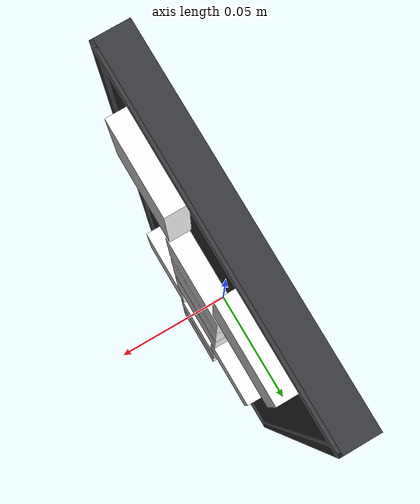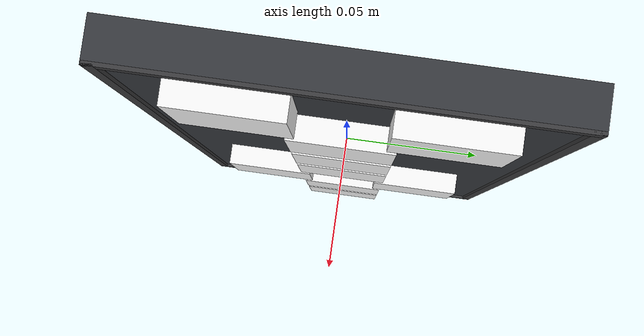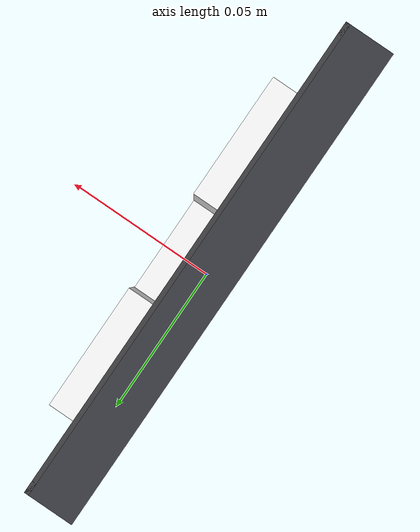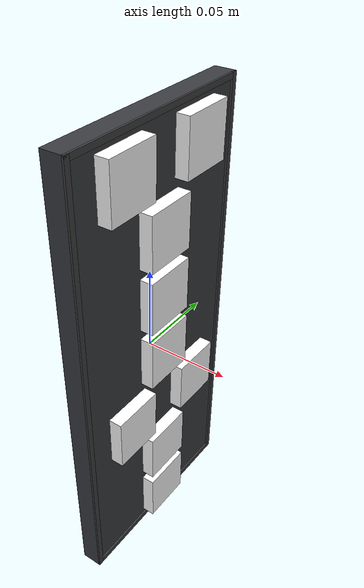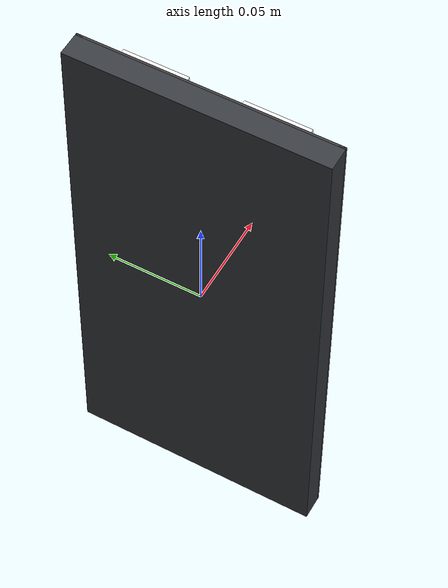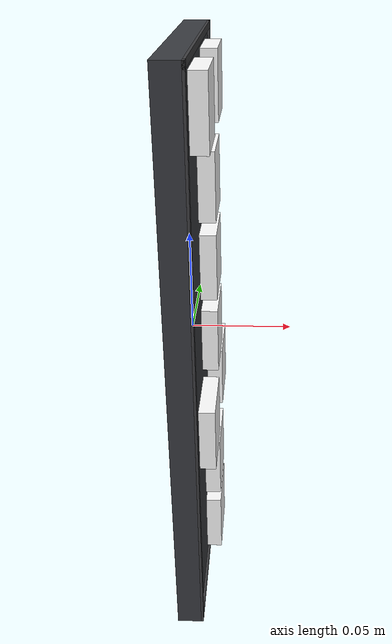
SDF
<?xml version="1.0"?>
<sdf version="1.8">
  <model name="elevator_button_v1">
    <static>false</static>
    <self_collide>false</self_collide>

    <link name="wall_panel">
      <inertial>
        <mass>2.0</mass>
        <inertia>
          <ixx>0.015918</ixx>
          <iyy>0.013091</iyy>
          <izz>0.002876</izz>
        </inertia>
      </inertial>
      <visual name="panel_visual">
        <geometry><box><size>0.012 0.1308 0.280</size></box></geometry>
        <material>
          <ambient>1 1 1 1</ambient>
          <diffuse>0.22 0.23 0.25 1</diffuse>
          <specular>0.30 0.30 0.30 1</specular>
          <pbr><metal><albedo_map>model://elevator_button_v1/textures/panel_steel.png</albedo_map><metalness>0.4</metalness><roughness>0.45</roughness></metal></pbr>
        </material>
      </visual>

      <!-- Machined rim: the photo shows a narrow dark frame around the plate,
           slightly thicker at the top and bottom rails. -->
      <visual name="panel_rim_top">
        <pose>0.0066 0 0.1383 0 0 0</pose>
        <geometry><box><size>0.0012 0.1308 0.0034</size></box></geometry>
        <material>
          <ambient>0.18 0.18 0.19 1</ambient>
          <diffuse>0.24 0.24 0.25 1</diffuse>
          <specular>0.18 0.18 0.18 1</specular>
          <pbr><metal><metalness>0.35</metalness><roughness>0.40</roughness></metal></pbr>
        </material>
      </visual>
      <visual name="panel_rim_bottom">
        <pose>0.0066 0 -0.1383 0 0 0</pose>
        <geometry><box><size>0.0012 0.1308 0.0034</size></box></geometry>
        <material>
          <ambient>0.18 0.18 0.19 1</ambient>
          <diffuse>0.24 0.24 0.25 1</diffuse>
          <specular>0.18 0.18 0.18 1</specular>
          <pbr><metal><metalness>0.35</metalness><roughness>0.40</roughness></metal></pbr>
        </material>
      </visual>
      <visual name="panel_rim_left">
        <pose>0.0066 -0.0637 0 0 0 0</pose>
        <geometry><box><size>0.0012 0.0034 0.280</size></box></geometry>
        <material>
          <ambient>0.18 0.18 0.19 1</ambient>
          <diffuse>0.24 0.24 0.25 1</diffuse>
          <specular>0.18 0.18 0.18 1</specular>
          <pbr><metal><metalness>0.35</metalness><roughness>0.40</roughness></metal></pbr>
        </material>
      </visual>
      <visual name="panel_rim_right">
        <pose>0.0066 0.0637 0 0 0 0</pose>
        <geometry><box><size>0.0012 0.0034 0.280</size></box></geometry>
        <material>
          <ambient>0.18 0.18 0.19 1</ambient>
          <diffuse>0.24 0.24 0.25 1</diffuse>
          <specular>0.18 0.18 0.18 1</specular>
          <pbr><metal><metalness>0.35</metalness><roughness>0.40</roughness></metal></pbr>
        </material>
      </visual>

      <collision name="panel_rib_top">
        <pose>0 0 0.137 0 0 0</pose>
        <geometry><box><size>0.012 0.1308 0.006</size></box></geometry>
      </collision>
      <collision name="panel_rib_a">
        <pose>0 0 0.0975 0 0 0</pose>
        <geometry><box><size>0.012 0.1308 0.005</size></box></geometry>
      </collision>
      <collision name="panel_rib_b">
        <pose>0 0 0.0585 0 0 0</pose>
        <geometry><box><size>0.012 0.1308 0.005</size></box></geometry>
      </collision>
      <collision name="panel_rib_c">
        <pose>0 0 0.0195 0 0 0</pose>
        <geometry><box><size>0.012 0.1308 0.005</size></box></geometry>
      </collision>
      <collision name="panel_rib_d">
        <pose>0 0 -0.0195 0 0 0</pose>
        <geometry><box><size>0.012 0.1308 0.005</size></box></geometry>
      </collision>
      <collision name="panel_rib_e">
        <pose>0 0 -0.0585 0 0 0</pose>
        <geometry><box><size>0.012 0.1308 0.005</size></box></geometry>
      </collision>
      <collision name="panel_rib_f">
        <pose>0 0 -0.0975 0 0 0</pose>
        <geometry><box><size>0.012 0.1308 0.005</size></box></geometry>
      </collision>
      <collision name="panel_rib_bottom">
        <pose>0 0 -0.137 0 0 0</pose>
        <geometry><box><size>0.012 0.1308 0.006</size></box></geometry>
      </collision>
    </link>

    <joint name="panel_world_joint" type="fixed">
      <parent>world</parent>
      <child>wall_panel</child>
    </joint>

    <!-- Every control is a real 4 mm spring-loaded link. -->
    <link name="button_alarm_face">
      <pose relative_to="wall_panel">0.010 -0.0298 0.117 0 0 0</pose>
      <inertial><mass>0.03</mass><inertia><ixx>0.00000545</ixx><iyy>0.00000288</iyy><izz>0.00000288</izz></inertia></inertial>
      <visual name="button_alarm_face">
        <geometry><box><size>0.008 0.033 0.033</size></box></geometry>
        <material>
          <ambient>1 1 1 1</ambient><diffuse>1 1 1 1</diffuse>
          <pbr><metal><albedo_map>model://elevator_button_v1/textures/button_alarm.png</albedo_map><metalness>0.08</metalness><roughness>0.30</roughness></metal></pbr>
        </material>
      </visual>
      <collision name="button_alarm_face_collision"><geometry><box><size>0.008 0.033 0.033</size></box></geometry><surface><friction><ode><mu>0.8</mu><mu2>0.8</mu2></ode></friction></surface></collision>
      <sensor name="button_alarm_contact" type="contact"><always_on>true</always_on><update_rate>200</update_rate><contact><collision>button_alarm_face_collision</collision></contact></sensor>
    </link>
    <joint name="button_alarm_press_joint" type="prismatic">
      <parent>wall_panel</parent><child>button_alarm_face</child>
      <axis><xyz>1 0 0</xyz><limit><lower>-0.004</lower><upper>0.0</upper></limit><dynamics><damping>0.50</damping><spring_reference>0.0</spring_reference><spring_stiffness>50.0</spring_stiffness></dynamics></axis>
    </joint>

    <link name="button_intercom_face">
      <pose relative_to="wall_panel">0.010 0.0298 0.117 0 0 0</pose>
      <inertial><mass>0.03</mass><inertia><ixx>0.00000545</ixx><iyy>0.00000288</iyy><izz>0.00000288</izz></inertia></inertial>
      <visual name="button_intercom_face">
        <geometry><box><size>0.008 0.033 0.033</size></box></geometry>
        <material>
          <ambient>1 1 1 1</ambient><diffuse>1 1 1 1</diffuse>
          <pbr><metal><albedo_map>model://elevator_button_v1/textures/button_intercom.png</albedo_map><metalness>0.08</metalness><roughness>0.30</roughness></metal></pbr>
        </material>
      </visual>
      <collision name="button_intercom_face_collision"><geometry><box><size>0.008 0.033 0.033</size></box></geometry><surface><friction><ode><mu>0.8</mu><mu2>0.8</mu2></ode></friction></surface></collision>
      <sensor name="button_intercom_contact" type="contact"><always_on>true</always_on><update_rate>200</update_rate><contact><collision>button_intercom_face_collision</collision></contact></sensor>
    </link>
    <joint name="button_intercom_press_joint" type="prismatic">
      <parent>wall_panel</parent><child>button_intercom_face</child>
      <axis><xyz>1 0 0</xyz><limit><lower>-0.004</lower><upper>0.0</upper></limit><dynamics><damping>0.50</damping><spring_reference>0.0</spring_reference><spring_stiffness>50.0</spring_stiffness></dynamics></axis>
    </joint>

    <link name="button_3_face">
      <pose relative_to="wall_panel">0.010 0 0.078 0 0 0</pose>
      <inertial><mass>0.03</mass><inertia><ixx>0.00000545</ixx><iyy>0.00000288</iyy><izz>0.00000288</izz></inertia></inertial>
      <visual name="button_3_face">
        <geometry><box><size>0.008 0.033 0.033</size></box></geometry>
        <material>
          <ambient>1 1 1 1</ambient><diffuse>1 1 1 1</diffuse>
          <pbr><metal><albedo_map>model://elevator_button_v1/textures/button_3.png</albedo_map><metalness>0.08</metalness><roughness>0.30</roughness></metal></pbr>
        </material>
      </visual>
      <collision name="button_3_face_collision"><geometry><box><size>0.008 0.033 0.033</size></box></geometry><surface><friction><ode><mu>0.8</mu><mu2>0.8</mu2></ode></friction></surface></collision>
      <sensor name="button_3_contact" type="contact"><always_on>true</always_on><update_rate>200</update_rate><contact><collision>button_3_face_collision</collision></contact></sensor>
    </link>
    <joint name="button_3_press_joint" type="prismatic">
      <parent>wall_panel</parent><child>button_3_face</child>
      <axis><xyz>1 0 0</xyz><limit><lower>-0.004</lower><upper>0.0</upper></limit><dynamics><damping>0.50</damping><spring_reference>0.0</spring_reference><spring_stiffness>50.0</spring_stiffness></dynamics></axis>
    </joint>

    <link name="button_2_face">
      <pose relative_to="wall_panel">0.010 0 0.039 0 0 0</pose>
      <inertial><mass>0.03</mass><inertia><ixx>0.00000545</ixx><iyy>0.00000288</iyy><izz>0.00000288</izz></inertia></inertial>
      <visual name="button_2_face">
        <geometry><box><size>0.008 0.033 0.033</size></box></geometry>
        <material>
          <ambient>1 1 1 1</ambient><diffuse>1 1 1 1</diffuse>
          <pbr><metal><albedo_map>model://elevator_button_v1/textures/button_2.png</albedo_map><metalness>0.08</metalness><roughness>0.30</roughness></metal></pbr>
        </material>
      </visual>
      <collision name="button_2_face_collision"><geometry><box><size>0.008 0.033 0.033</size></box></geometry><surface><friction><ode><mu>0.8</mu><mu2>0.8</mu2></ode></friction></surface></collision>
      <sensor name="button_2_contact" type="contact"><always_on>true</always_on><update_rate>200</update_rate><contact><collision>button_2_face_collision</collision></contact></sensor>
    </link>
    <joint name="button_2_press_joint" type="prismatic">
      <parent>wall_panel</parent><child>button_2_face</child>
      <axis><xyz>1 0 0</xyz><limit><lower>-0.004</lower><upper>0.0</upper></limit><dynamics><damping>0.50</damping><spring_reference>0.0</spring_reference><spring_stiffness>50.0</spring_stiffness></dynamics></axis>
    </joint>

    <link name="button_1_face">
      <pose relative_to="wall_panel">0.010 0 0.0 0 0 0</pose>
      <inertial><mass>0.03</mass><inertia><ixx>0.00000545</ixx><iyy>0.00000288</iyy><izz>0.00000288</izz></inertia></inertial>
      <visual name="button_1_face">
        <geometry><box><size>0.008 0.033 0.033</size></box></geometry>
        <material>
          <ambient>1 1 1 1</ambient><diffuse>1 1 1 1</diffuse>
          <pbr><metal><albedo_map>model://elevator_button_v1/textures/button_1.png</albedo_map><metalness>0.08</metalness><roughness>0.30</roughness></metal></pbr>
        </material>
      </visual>
      <collision name="button_1_face_collision"><geometry><box><size>0.008 0.033 0.033</size></box></geometry><surface><friction><ode><mu>0.8</mu><mu2>0.8</mu2></ode></friction></surface></collision>
      <sensor name="button_1_contact" type="contact"><always_on>true</always_on><update_rate>200</update_rate><contact><collision>button_1_face_collision</collision></contact></sensor>
    </link>
    <joint name="button_1_press_joint" type="prismatic">
      <parent>wall_panel</parent><child>button_1_face</child>
      <axis><xyz>1 0 0</xyz><limit><lower>-0.004</lower><upper>0.0</upper></limit><dynamics><damping>0.50</damping><spring_reference>0.0</spring_reference><spring_stiffness>50.0</spring_stiffness></dynamics></axis>
    </joint>

    <link name="button_open_face">
      <pose relative_to="wall_panel">0.010 -0.0298 -0.039 0 0 0</pose>
      <inertial><mass>0.03</mass><inertia><ixx>0.00000545</ixx><iyy>0.00000288</iyy><izz>0.00000288</izz></inertia></inertial>
      <visual name="button_open_face">
        <geometry><box><size>0.008 0.033 0.033</size></box></geometry>
        <material>
          <ambient>1 1 1 1</ambient><diffuse>1 1 1 1</diffuse>
          <pbr><metal><albedo_map>model://elevator_button_v1/textures/button_open.png</albedo_map><metalness>0.08</metalness><roughness>0.30</roughness></metal></pbr>
        </material>
      </visual>
      <collision name="button_open_face_collision"><geometry><box><size>0.008 0.033 0.033</size></box></geometry><surface><friction><ode><mu>0.8</mu><mu2>0.8</mu2></ode></friction></surface></collision>
      <sensor name="button_open_contact" type="contact"><always_on>true</always_on><update_rate>200</update_rate><contact><collision>button_open_face_collision</collision></contact></sensor>
    </link>
    <joint name="button_open_press_joint" type="prismatic">
      <parent>wall_panel</parent><child>button_open_face</child>
      <axis><xyz>1 0 0</xyz><limit><lower>-0.004</lower><upper>0.0</upper></limit><dynamics><damping>0.50</damping><spring_reference>0.0</spring_reference><spring_stiffness>50.0</spring_stiffness></dynamics></axis>
    </joint>

    <link name="button_close_face">
      <pose relative_to="wall_panel">0.010 0.0298 -0.039 0 0 0</pose>
      <inertial><mass>0.03</mass><inertia><ixx>0.00000545</ixx><iyy>0.00000288</iyy><izz>0.00000288</izz></inertia></inertial>
      <visual name="button_close_face">
        <geometry><box><size>0.008 0.033 0.033</size></box></geometry>
        <material>
          <ambient>1 1 1 1</ambient><diffuse>1 1 1 1</diffuse>
          <pbr><metal><albedo_map>model://elevator_button_v1/textures/button_close.png</albedo_map><metalness>0.08</metalness><roughness>0.30</roughness></metal></pbr>
        </material>
      </visual>
      <collision name="button_close_face_collision"><geometry><box><size>0.008 0.033 0.033</size></box></geometry><surface><friction><ode><mu>0.8</mu><mu2>0.8</mu2></ode></friction></surface></collision>
      <sensor name="button_close_contact" type="contact"><always_on>true</always_on><update_rate>200</update_rate><contact><collision>button_close_face_collision</collision></contact></sensor>
    </link>
    <joint name="button_close_press_joint" type="prismatic">
      <parent>wall_panel</parent><child>button_close_face</child>
      <axis><xyz>1 0 0</xyz><limit><lower>-0.004</lower><upper>0.0</upper></limit><dynamics><damping>0.50</damping><spring_reference>0.0</spring_reference><spring_stiffness>50.0</spring_stiffness></dynamics></axis>
    </joint>

    <link name="button_up_face">
      <pose relative_to="wall_panel">0.010 0 -0.078 0 0 0</pose>
      <inertial><mass>0.03</mass><inertia><ixx>0.00000545</ixx><iyy>0.00000288</iyy><izz>0.00000288</izz></inertia></inertial>
      <visual name="button_up_face">
        <geometry><box><size>0.008 0.033 0.033</size></box></geometry>
        <material>
          <ambient>1 1 1 1</ambient><diffuse>1 1 1 1</diffuse>
          <pbr><metal><albedo_map>model://elevator_button_v1/textures/button_up.png</albedo_map><metalness>0.08</metalness><roughness>0.30</roughness></metal></pbr>
        </material>
      </visual>
      <collision name="button_up_face_collision"><geometry><box><size>0.008 0.033 0.033</size></box></geometry><surface><friction><ode><mu>0.8</mu><mu2>0.8</mu2></ode></friction></surface></collision>
      <sensor name="button_up_contact" type="contact"><always_on>true</always_on><update_rate>200</update_rate><contact><collision>button_up_face_collision</collision></contact></sensor>
    </link>
    <joint name="button_up_press_joint" type="prismatic">
      <parent>wall_panel</parent><child>button_up_face</child>
      <axis><xyz>1 0 0</xyz><limit><lower>-0.004</lower><upper>0.0</upper></limit><dynamics><damping>0.50</damping><spring_reference>0.0</spring_reference><spring_stiffness>50.0</spring_stiffness></dynamics></axis>
    </joint>

    <link name="button_down_face">
      <pose relative_to="wall_panel">0.010 0 -0.117 0 0 0</pose>
      <inertial><mass>0.03</mass><inertia><ixx>0.00000545</ixx><iyy>0.00000288</iyy><izz>0.00000288</izz></inertia></inertial>
      <visual name="button_down_face">
        <geometry><box><size>0.008 0.033 0.033</size></box></geometry>
        <material>
          <ambient>1 1 1 1</ambient><diffuse>1 1 1 1</diffuse>
          <pbr><metal><albedo_map>model://elevator_button_v1/textures/button_down.png</albedo_map><metalness>0.08</metalness><roughness>0.30</roughness></metal></pbr>
        </material>
      </visual>
      <collision name="button_down_face_collision"><geometry><box><size>0.008 0.033 0.033</size></box></geometry><surface><friction><ode><mu>0.8</mu><mu2>0.8</mu2></ode></friction></surface></collision>
      <sensor name="button_down_contact" type="contact"><always_on>true</always_on><update_rate>200</update_rate><contact><collision>button_down_face_collision</collision></contact></sensor>
    </link>
    <joint name="button_down_press_joint" type="prismatic">
      <parent>wall_panel</parent><child>button_down_face</child>
      <axis><xyz>1 0 0</xyz><limit><lower>-0.004</lower><upper>0.0</upper></limit><dynamics><damping>0.50</damping><spring_reference>0.0</spring_reference><spring_stiffness>50.0</spring_stiffness></dynamics></axis>
    </joint>

    <plugin filename="ignition-gazebo-touchplugin-system" name="gz::sim::systems::TouchPlugin">
      <target>piper_pika</target>
      <namespace>elevator_button</namespace>
      <time>0.02</time>
      <enabled>true</enabled>
    </plugin>
    <plugin filename="ignition-gazebo-joint-state-publisher-system" name="ignition::gazebo::systems::JointStatePublisher">
      <joint_name>button_alarm_press_joint</joint_name>
      <joint_name>button_intercom_press_joint</joint_name>
      <joint_name>button_3_press_joint</joint_name>
      <joint_name>button_2_press_joint</joint_name>
      <joint_name>button_1_press_joint</joint_name>
      <joint_name>button_open_press_joint</joint_name>
      <joint_name>button_close_press_joint</joint_name>
      <joint_name>button_up_press_joint</joint_name>
      <joint_name>button_down_press_joint</joint_name>
      <topic>/elevator_button/joint_state</topic>
      <update_rate>100</update_rate>
    </plugin>
  </model>
</sdf>
